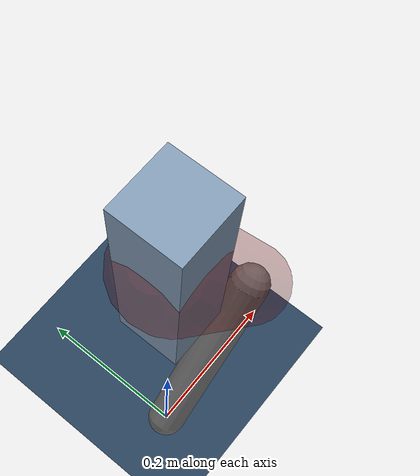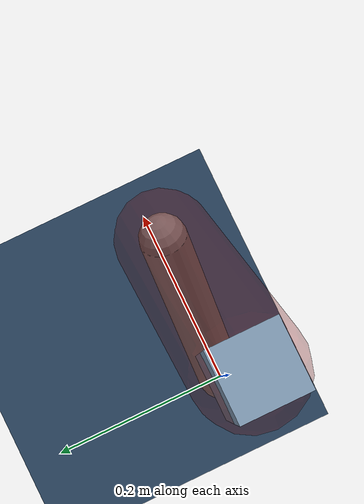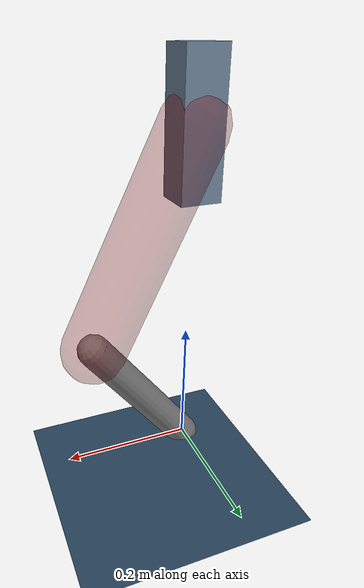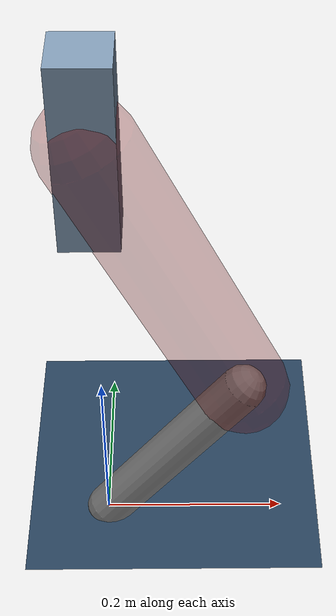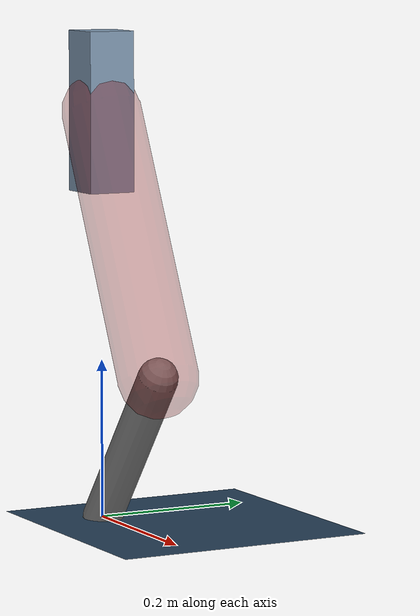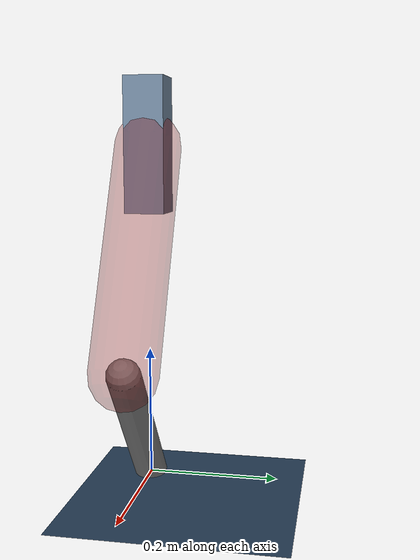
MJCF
<mujoco model="Hopper2D">
	<compiler inertiafromgeom="true" angle="radian" />
	<option timestep="0.001" integrator="implicit" cone="elliptic" solver="Newton" tolerance="1e-10" />

	<default>
		<geom contype="1" conaffinity="1" condim="3" friction="2 0.005 0.0001" solref="0.005 1" />
		<joint limited="true" damping="0.1" />
	</default>

	<asset>
		<texture name="skybox" type="skybox" builtin="gradient" rgb1=".4 .6 .8" rgb2="0 0 0" width="800" height="800" />
		<texture name="grid" type="2d" builtin="checker" rgb1=".1 .2 .3" rgb2=".2 .3 .4" width="300" height="300" mark="edge" markrgb=".2 .3 .4" />
		<material name="ground" texture="grid" texrepeat="1 1" texuniform="true" reflectance="0.1" />
		<material name="leg" rgba="0.5 0.6 0.7 1" />
	</asset>

	<worldbody>

		<geom name="floor" type="plane" size="5 5 0.25" material="ground" />

		<light directional="false" diffuse="0.8 0.8 0.8" specular="0.3 0.3 0.3" pos="0 0 2" dir="0 0 -1" />
		<light mode="targetbodycom" target="base" directional="false" diffuse="0.8 0.8 0.8" specular="0.3 0.3 0.3" pos="0 0 2" dir="0 0 -1" />

		<camera name="fixed" pos="0 -2 1" xyaxes="1 0 0 0 0 1" />
		<camera name="tracking" mode="trackcom" pos="0 -3 1" />

		<body name="root" pos="0 0 0.5124953476311157">
			<joint name="slide_x" type="slide" axis="1 0 0" range="-100 100" />
			<joint name="slide_z" type="slide" axis="0 0 1" range="0 10" />

			<body name="base" pos="0 0 0">
				<geom name="torso" type="box" size="0.03 0.03 0.1" mass="2.109" material="leg" />

				<body name="link1" pos="0 0 0" euler="0 1.1208862395221655 0">
					<joint type="hinge" axis="0 -1 0" pos="0 0 0" name="hinge1" limited="true" range="-3.14 3.14" stiffness="0" damping="0.1" />
					<geom name="thigh" type="capsule" fromto="0 0 0 0.3497213374968623 0 0" size="0.05" rgba="0.5 0 0 0.3" mass="1.1259197449912144" />

					<body name="link2" pos="0.3497213374968623 0 0" euler="0 1.1059452059511687 0">
						<joint type="hinge" axis="0 -1 0" pos="0 0 0" name="hinge2" limited="true" range="-3.14 3.14" stiffness="0" damping="0.1" />
						<geom name="shank" type="capsule" fromto="0 0 0 0.24933351865466427 0 0" size="0.025" mass="0.4419668149237314" />

					</body>
				</body>
			</body>
		</body>
	</worldbody>

	<actuator>
		<motor name="torque1" joint="hinge1" ctrlrange="-42.3327338829627 42.3327338829627" ctrllimited="true" gear="1" />
		<motor name="torque2" joint="hinge2" ctrlrange="-91.15634771275663 91.15634771275663" ctrllimited="true" gear="1" />
	</actuator>
</mujoco>
